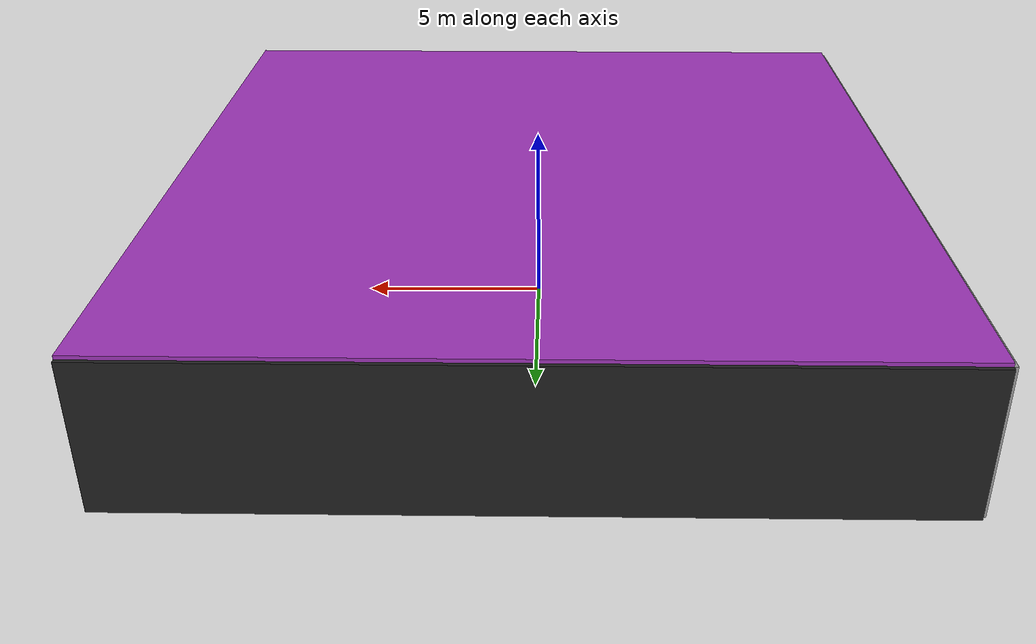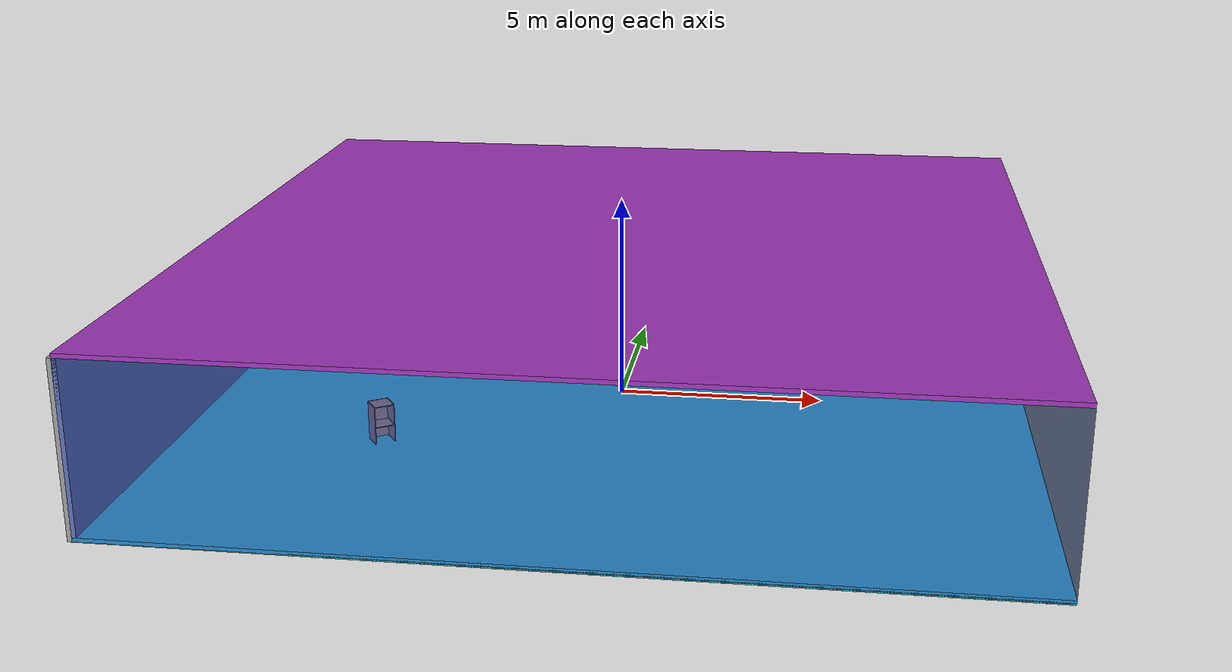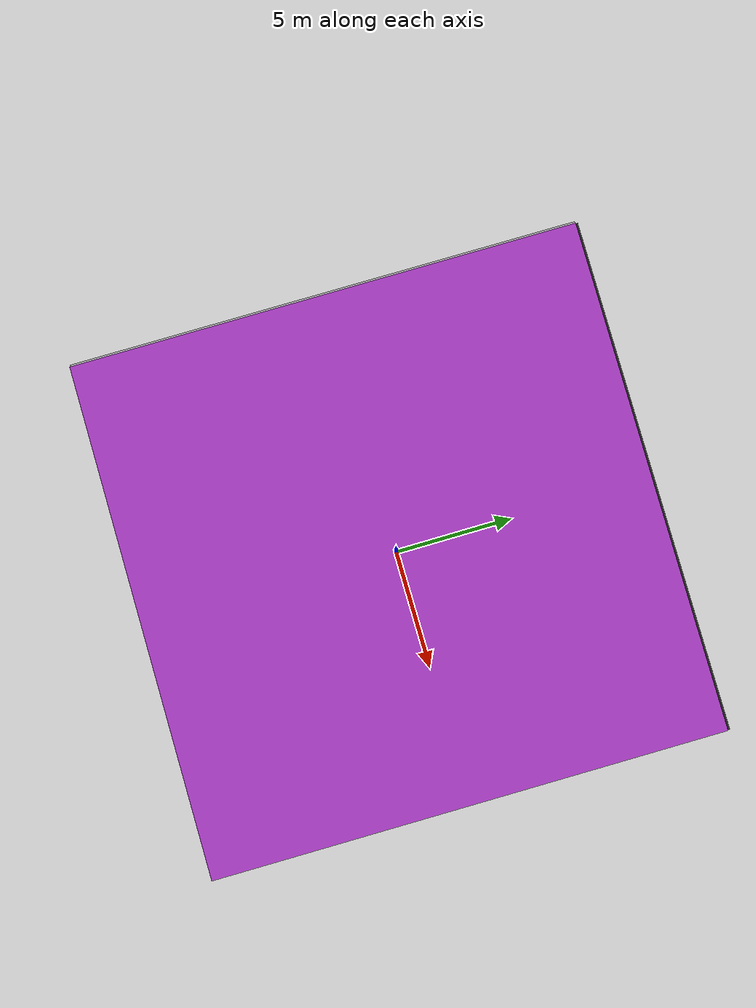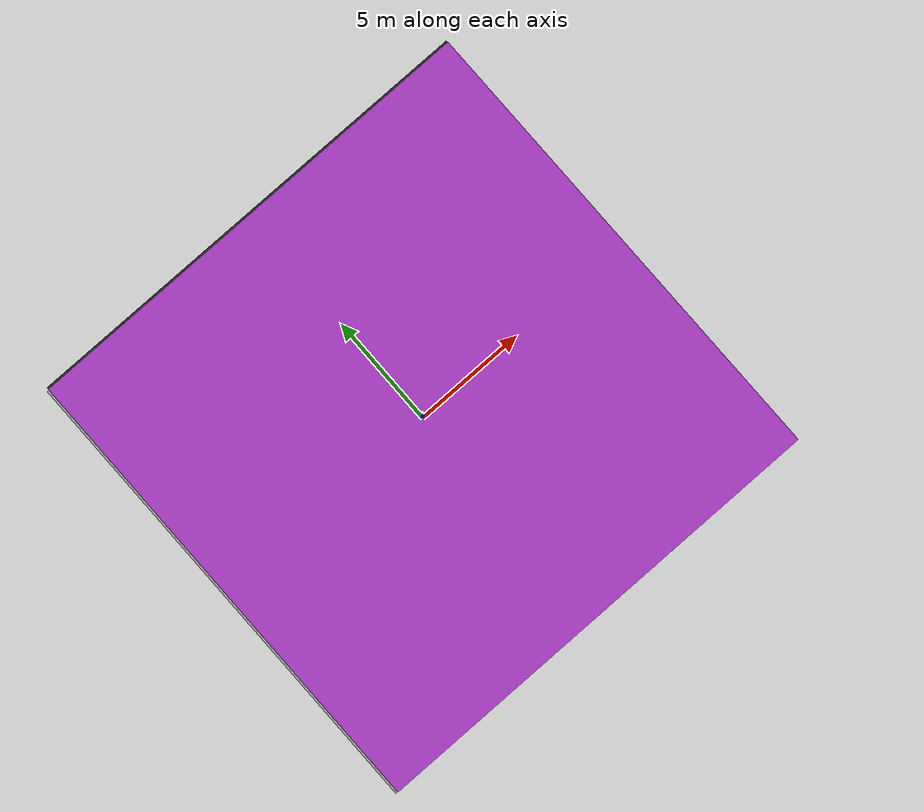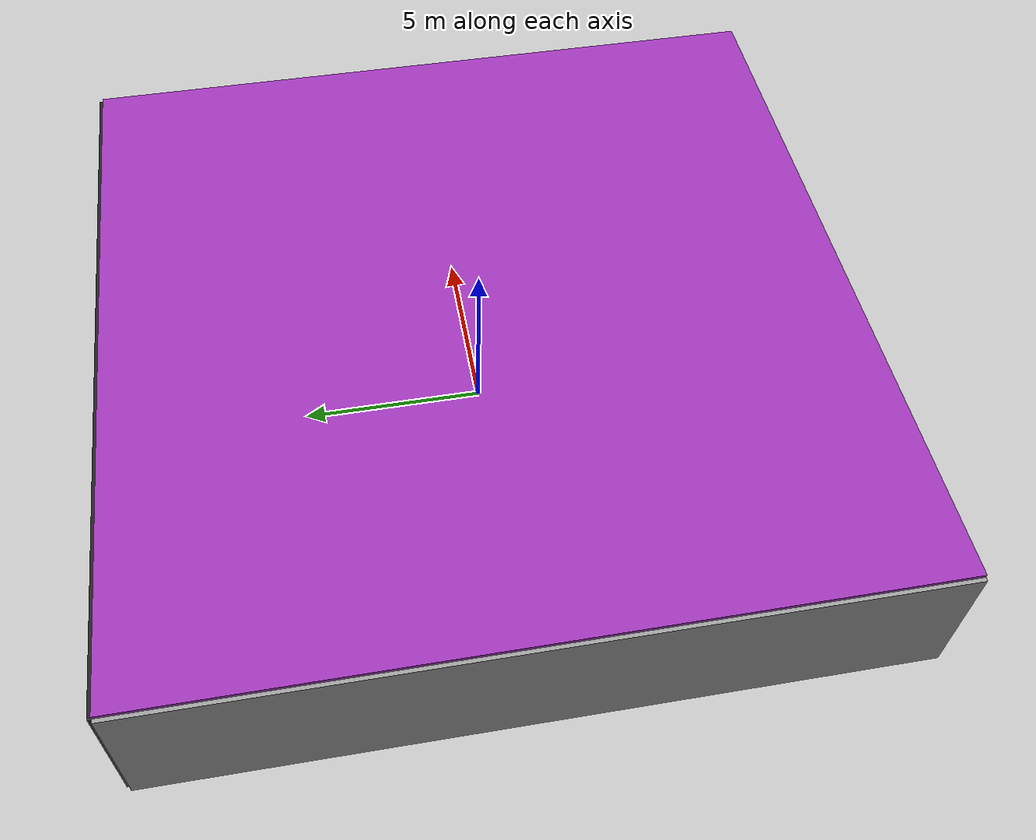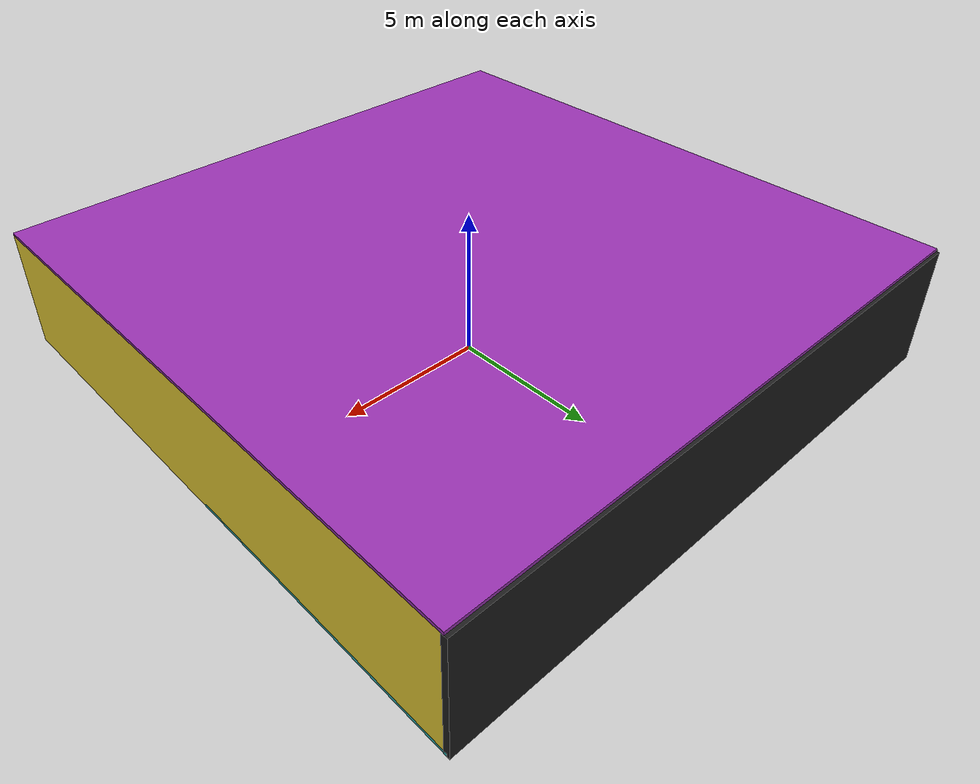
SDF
<sdf version="1.4">
 <world name="default">
  <physics type="ode">
   <max_step_size>0.001</max_step_size>
   <real_time_factor>1</real_time_factor>
   <real_time_update_rate>1000</real_time_update_rate>
   <gravity>0 0 -9.8</gravity>
  </physics>
  <scene><ambient>0.4 0.4 0.4 1</ambient><background>0.7 0.7 0.7 1</background><shadows>1</shadows></scene>
  <model name="Surrounding">
   <static>1</static>
   <link name="Ceiling">
    <collision name="Ceiling_Collision"><geometry><box><size>20 20 0.1</size></box></geometry></collision>
    <visual name="Ceiling_Visual">
     <geometry><box><size>20 20 0.1</size></box></geometry>
     <material>
      <script><uri>file://media/materials/scripts/gazebo.material</uri><name>Gazebo/PurpleGlow</name></script>
     </material>
    </visual>
    <pose>0 0 4.05 0 0 0</pose>
   </link>
   <link name="Wall_South">
    <collision name="Wall_South_Collision">
     <geometry><box><size>20 0 4</size></box></geometry>
     <pose>0 0 2 0 -0 0</pose>
    </collision>
    <visual name="Wall_South_Visual">
     <pose>0 0 2 0 -0 0</pose>
     <geometry><box><size>20 0 4</size></box></geometry>
     <material>
      <script><uri>file://media/materials/scripts/gazebo.material</uri><name>Gazebo/BlueTransparent</name></script>
     </material>
    </visual>
    <velocity_decay><linear>0</linear><angular>0</angular></velocity_decay>
    <pose>0 -10 0 0 -0 0</pose>
   </link>
   <link name="Wall_East">
    <collision name="Wall_21_Collision">
     <geometry><box><size>20 0 4</size></box></geometry>
     <pose>0 0 2 0 -0 0</pose>
    </collision>
    <visual name="Wall_21_Visual">
     <pose>0 0 2 0 -0 0</pose>
     <geometry><box><size>20 0 4</size></box></geometry>
     <material>
      <script><uri>file://media/materials/scripts/gazebo.material</uri><name>Gazebo/ZincYellow</name></script>
     </material>
    </visual>
    <velocity_decay><linear>0</linear><angular>0</angular></velocity_decay>
    <pose>10 0 0 0 -0 1.5708</pose>
   </link>
   <link name="Wall_North">
    <collision name="Wall_22_Collision">
     <geometry><box><size>20 0.2 4</size></box></geometry>
     <pose>0 0 2 0 -0 0</pose>
    </collision>
    <visual name="Wall_22_Visual">
     <pose>0 0 2 0 -0 0</pose>
     <geometry><box><size>20 0.2 4</size></box></geometry>
     <material>
      <script><uri>file://media/materials/scripts/gazebo.material</uri><name>Gazebo/Black</name></script>
     </material>
    </visual>
    <velocity_decay><linear>0</linear><angular>0</angular></velocity_decay>
    <pose>0 10 0 0 -0 0</pose>
   </link>
   <link name="Wall_West">
    <collision name="Wall_23_Collision">
     <geometry><box><size>20 0.2 4</size></box></geometry>
     <pose>0 0 2 0 -0 0</pose>
    </collision>
    <visual name="Wall_23_Visual">
     <pose>0 0 2 0 -0 0</pose>
     <geometry><box><size>20 0.2 4</size></box></geometry>
     <material>
      <script><uri>file://media/materials/scripts/gazebo.material</uri><name>Gazebo/Grey</name></script>
     </material>
    </visual>
    <velocity_decay><linear>0</linear><angular>0</angular></velocity_decay>
    <pose>-10 0 0 0 0 -1.5708</pose>
   </link>
   <link name="Ground_link">
    <collision name="collision">
     <pose>0 0 .05 0 -0 0</pose>
     <geometry><box><size>20 20 0.1</size></box></geometry>
    </collision>
    <visual name="visual">
     <pose>0 0 .05 0 -0 0</pose>
     <geometry><box><size>20 20 0.1</size></box></geometry>
     <material>
      <script><uri>file://media/materials/scripts/gazebo.material</uri><name>Gazebo/TurquoiseGlow</name></script>
     </material>
    </visual>
   </link>
   <static>1</static>
  </model>
  <spherical_coordinates>
   <surface_model>EARTH_WGS84</surface_model>
   <latitude_deg>0</latitude_deg>
   <longitude_deg>0</longitude_deg>
   <elevation>0</elevation>
   <heading_deg>0</heading_deg>
  </spherical_coordinates>
  <light name="lightball_0" type="diffuse">
   <diffuse>0.8 0.8 0.8 1</diffuse>
   <specular>0.2 0.2 0.2 1</specular>
   <attenuation>
    <range>100</range>
    <constant>0.7</constant>
    <linear>0.01</linear>
    <quadratic>0.001</quadratic>
   </attenuation>
   <direction>-0.5 0.1 -0.9</direction>
   <pose>0.900896412997 0.0710850774739 1.58094537079 0 0 0</pose>
  </light>
  <light name="lightball_1" type="diffuse">
   <diffuse>0.8 0.8 0.8 1</diffuse>
   <specular>0.2 0.2 0.2 1</specular>
   <attenuation>
    <range>100</range>
    <constant>0.7</constant>
    <linear>0.01</linear>
    <quadratic>0.001</quadratic>
   </attenuation>
   <direction>-0.5 0.1 -0.9</direction>
   <pose>7.07824092682 2.51700900382 0.941582095157 0 0 0</pose>
  </light>
  <light name="lightball_2" type="diffuse">
   <diffuse>0.8 0.8 0.8 1</diffuse>
   <specular>0.2 0.2 0.2 1</specular>
   <attenuation>
    <range>100</range>
    <constant>0.7</constant>
    <linear>0.01</linear>
    <quadratic>0.001</quadratic>
   </attenuation>
   <direction>-0.5 0.1 -0.9</direction>
   <pose>8.08941452699 -1.57875678613 2.04126808612 0 0 0</pose>
  </light>
  <light name="lightball_3" type="diffuse">
   <diffuse>0.8 0.8 0.8 1</diffuse>
   <specular>0.2 0.2 0.2 1</specular>
   <attenuation>
    <range>100</range>
    <constant>0.7</constant>
    <linear>0.01</linear>
    <quadratic>0.001</quadratic>
   </attenuation>
   <direction>-0.5 0.1 -0.9</direction>
   <pose>0.147616218063 1.53281734223 1.68344366857 0 0 0</pose>
  </light>
  <light name="lightball_4" type="diffuse">
   <diffuse>0.8 0.8 0.8 1</diffuse>
   <specular>0.2 0.2 0.2 1</specular>
   <attenuation>
    <range>100</range>
    <constant>0.7</constant>
    <linear>0.01</linear>
    <quadratic>0.001</quadratic>
   </attenuation>
   <direction>-0.5 0.1 -0.9</direction>
   <pose>-7.36937241786 -7.86398932581 1.82501515247 0 0 0</pose>
  </light>
  <light name="lightball_5" type="diffuse">
   <diffuse>0.8 0.8 0.8 1</diffuse>
   <specular>0.2 0.2 0.2 1</specular>
   <attenuation>
    <range>100</range>
    <constant>0.7</constant>
    <linear>0.01</linear>
    <quadratic>0.001</quadratic>
   </attenuation>
   <direction>-0.5 0.1 -0.9</direction>
   <pose>1.95272671059 -2.54178589091 3.4345664776 0 0 0</pose>
  </light>
  <include><uri>model://table</uri><pose>-7.07261457004 2.40250352387 0 0 0 2.92571130757</pose></include>
  <include><uri>model://cabinet</uri><pose>-5.10521499586 -4.1180595807 0 0 0 2.17867027459</pose></include>
 </world>
</sdf>

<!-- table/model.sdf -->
<sdf version="1.5">
  <model name="table">
    <static>true</static>
    <link name="link">
      <collision name="surface">
        <pose>0 0 1.0 0 0 0</pose>
        <geometry>
          <box>
            <size>1.5 0.8 0.03</size>
          </box>
        </geometry>
        <surface>
          <friction>
            <ode>
              <mu>0.6</mu>
              <mu2>0.6</mu2>
            </ode>
          </friction>
        </surface>
      </collision>
      <visual name="visual1">
        <pose>0 0 1.0 0 0 0</pose>
        <geometry>
          <box>
            <size>1.5 0.8 0.03</size>
          </box>
        </geometry>
        <material>
          <script>
            <uri>model://media/materials/scripts/gazebo.material</uri>
            <name>Gazebo/Wood</name>
          </script>
        </material>
      </visual>
      <collision name="front_left_leg">
        <pose>0.68 0.38 0.5 0 0 0</pose>
        <geometry>
          <cylinder>
            <radius>0.02</radius>
            <length>1.0</length>
          </cylinder>
        </geometry>
      </collision>
      <visual name="front_left_leg">
        <pose>0.68 0.38 0.5 0 0 0</pose>
        <geometry>
          <cylinder>
            <radius>0.02</radius>
            <length>1.0</length>
          </cylinder>
        </geometry>
        <material>
          <script>
            <uri>model://media/materials/scripts/gazebo.material</uri>
            <name>Gazebo/Grey</name>
          </script>
        </material>
      </visual>
      <collision name="front_right_leg">
        <pose>0.68 -0.38 0.5 0 0 0</pose>
        <geometry>
          <cylinder>
            <radius>0.02</radius>
            <length>1.0</length>
          </cylinder>
        </geometry>
      </collision>
      <visual name="front_right_leg">
        <pose>0.68 -0.38 0.5 0 0 0</pose>
        <geometry>
          <cylinder>
            <radius>0.02</radius>
            <length>1.0</length>
          </cylinder>
        </geometry>
        <material>
          <script>
            <uri>model://media/materials/scripts/gazebo.material</uri>
            <name>Gazebo/Grey</name>
          </script>
        </material>
      </visual>
      <collision name="back_right_leg">
        <pose>-0.68 -0.38 0.5 0 0 0</pose>
        <geometry>
          <cylinder>
            <radius>0.02</radius>
            <length>1.0</length>
          </cylinder>
        </geometry>
      </collision>
      <visual name="back_right_leg">
        <pose>-0.68 -0.38 0.5 0 0 0</pose>
        <geometry>
          <cylinder>
            <radius>0.02</radius>
            <length>1.0</length>
          </cylinder>
        </geometry>
        <material>
          <script>
            <uri>model://media/materials/scripts/gazebo.material</uri>
            <name>Gazebo/Grey</name>
          </script>
        </material>
      </visual>
      <collision name="back_left_leg">
        <pose>-0.68 0.38 0.5 0 0 0</pose>
        <geometry>
          <cylinder>
            <radius>0.02</radius>
            <length>1.0</length>
          </cylinder>
        </geometry>
      </collision>
      <visual name="back_left_leg">
        <pose>-0.68 0.38 0.5 0 0 0</pose>
        <geometry>
          <cylinder>
            <radius>0.02</radius>
            <length>1.0</length>
          </cylinder>
        </geometry>
        <material>
          <script>
            <uri>model://media/materials/scripts/gazebo.material</uri>
            <name>Gazebo/Grey</name>
          </script>
        </material>
      </visual>
    </link>
  </model>
</sdf>

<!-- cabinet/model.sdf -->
<sdf version="1.5">
  <model name="cabinet">
    <static>true</static>
    <link name="cabinet_bottom_plate">
      <inertial>
        <pose>0 0 -1 0 0 0</pose>
        <inertia>
          <ixx>2.050000</ixx>
          <ixy>0</ixy>
          <ixz>0</ixz>
          <iyy>2.050000</iyy>
          <iyz>0</iyz>
          <izz>2.050000</izz>
        </inertia>
        <mass>25.000000</mass>
      </inertial>
      <collision name="cabinet_bottom_plate_geom">
        <pose>0 0 0.010000 0 0 0</pose>
        <geometry>
          <box>
            <size>0.450000 0.450000 0.020000</size>
          </box>
        </geometry>
      </collision>
      <visual name="cabinet_bottom_plate_geom_visual">
        <pose>0 0 0.010000 0 0 0</pose>
        <geometry>
          <box>
            <size>0.450000 0.450000 0.020000</size>
          </box>
        </geometry>
        <material>
          <script>
            <uri>model://media/materials/scripts/gazebo.material</uri>
            <name>Gazebo/Wood</name>
          </script>
        </material>
      </visual>
      <collision name="cabinet_bottom_plate_geom_cabinet_back_plate">
        <pose>0.235000 0 0.510000 0 0 0</pose>
        <geometry>
          <box>
            <size>0.020000 0.450000 1.020000</size>
          </box>
        </geometry>
      </collision>
      <visual name="cabinet_bottom_plate_geom_cabinet_back_plate_visual">
        <pose>0.235000 0 0.510000 0 0 0</pose>
        <geometry>
          <box>
            <size>0.020000 0.450000 1.020000</size>
          </box>
        </geometry>
        <material>
          <script>
            <uri>model://media/materials/scripts/gazebo.material</uri>
            <name>Gazebo/Wood</name>
          </script>
        </material>
      </visual>
      <collision name="cabinet_bottom_plate_geom_cabinet_left_plate">
        <pose>0 0.235000 0.510000 0 0 0</pose>
        <geometry>
          <box>
            <size>0.450000 0.020000 1.020000</size>
          </box>
        </geometry>
      </collision>
      <visual name="cabinet_bottom_plate_geom_cabinet_left_plate_visual">
        <pose>0 0.235000 0.510000 0 0 0</pose>
        <geometry>
          <box>
            <size>0.450000 0.020000 1.020000</size>
          </box>
        </geometry>
        <material>
          <script>
            <uri>model://media/materials/scripts/gazebo.material</uri>
            <name>Gazebo/Wood</name>
          </script>
        </material>
      </visual>
      <collision name="cabinet_bottom_plate_geom_cabinet_middle_plate">
        <pose>0 0 0.510000 0 0 0</pose>
        <geometry>
          <box>
            <size>0.450000 0.450000 0.020000</size>
          </box>
        </geometry>
      </collision>
      <visual name="cabinet_bottom_plate_geom_cabinet_middle_plate_visual">
        <pose>0 0 0.510000 0 0 0</pose>
        <geometry>
          <box>
            <size>0.450000 0.450000 0.020000</size>
          </box>
        </geometry>
        <material>
          <script>
            <uri>model://media/materials/scripts/gazebo.material</uri>
            <name>Gazebo/Wood</name>
          </script>
        </material>
      </visual>
      <collision name="cabinet_bottom_plate_geom_cabinet_right_plate">
        <pose>0 -0.235000 0.510000 0 0 0</pose>
        <geometry>
          <box>
            <size>0.450000 0.020000 1.020000</size>
          </box>
        </geometry>
      </collision>
      <visual name="cabinet_bottom_plate_geom_cabinet_right_plate_visual">
        <pose>0 -0.235000 0.510000 0 0 0</pose>
        <geometry>
          <box>
            <size>0.450000 0.020000 1.020000</size>
          </box>
        </geometry>
        <material>
          <script>
            <uri>model://media/materials/scripts/gazebo.material</uri>
            <name>Gazebo/Wood</name>
          </script>
        </material>
      </visual>
      <collision name="cabinet_bottom_plate_geom_cabinet_top_plate">
        <pose>0 0 1.010000 0 0 0</pose>
        <geometry>
          <box>
            <size>0.450000 0.450000 0.020000</size>
          </box>
        </geometry>
      </collision>
      <visual name="cabinet_bottom_plate_geom_cabinet_top_plate_visual">
        <pose>0 0 1.010000 0 0 0</pose>
        <geometry>
          <box>
            <size>0.450000 0.450000 0.020000</size>
          </box>
        </geometry>
        <material>
          <script>
            <uri>model://media/materials/scripts/gazebo.material</uri>
            <name>Gazebo/Wood</name>
          </script>
        </material>
      </visual>
    </link>
  </model>
</sdf>
